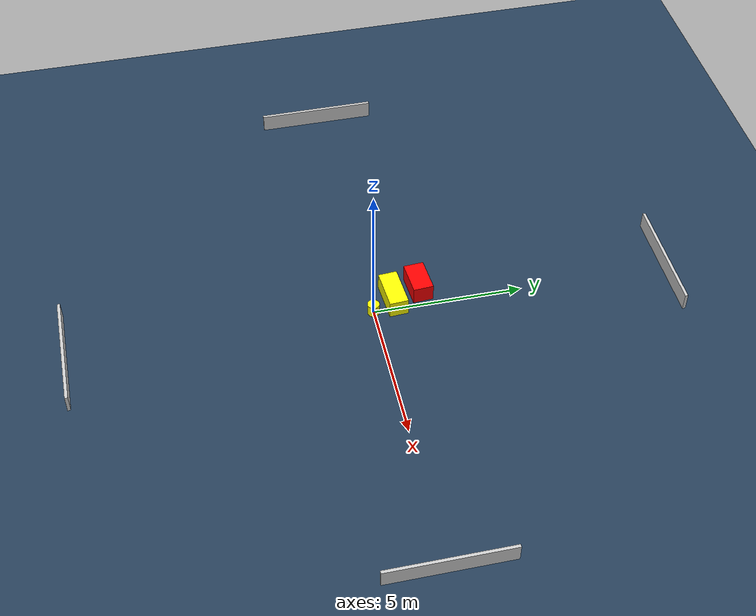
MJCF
<?xml version="1.0" ?>
<mujoco model="generated_environment">
  <option timestep="0.01" integrator="RK4" cone="elliptic"/>
  <default>
    <geom density="1"/>
  </default>
  <asset>
    <texture builtin="gradient" height="3072" name="skybox" rgb1="0.3 0.5 0.7" rgb2="0 0 0" type="skybox" width="512"/>
    <texture builtin="checker" height="300" name="groundplane" rgb1="0.2 0.3 0.4" rgb2="0.1 0.2 0.3" type="2d" width="300"/>
    <material name="groundplane" reflectance="0.2" texrepeat="5 5" texture="groundplane"/>
  </asset>
  <worldbody>
    <light dir="0 0 -1" directional="true" pos="0 0 1.5"/>
    <geom condim="3" friction="0.5 0.005 0.001" material="groundplane" name="floor" pos="0 0 0" size="0 0 0.05" type="plane"/>
    <body name="walls">
      <geom name="wall_1" condim="4" pos="-10.0 0.0 0.3" rgba="0.800000011920929 0.800000011920929 0.800000011920929 1.0" size="0.05 2.0 0.3" type="box"/>
      <geom name="wall_2" condim="4" pos="10.0 0.0 0.3" rgba="0.800000011920929 0.800000011920929 0.800000011920929 1.0" size="0.05 2.0 0.3" type="box"/>
      <geom name="wall_3" condim="4" pos="0.0 -10.0 0.3" rgba="0.800000011920929 0.800000011920929 0.800000011920929 1.0" size="2.0 0.05 0.3" type="box"/>
      <geom name="wall_4" condim="4" pos="0.0 10.0 0.3" rgba="0.800000011920929 0.800000011920929 0.800000011920929 1.0" size="2.0 0.05 0.3" type="box"/>
    </body>
    <body name="robot">
      <joint name="joint_x" type="slide" pos="0 0 0" axis="1 0 0"/>
      <joint name="joint_y" type="slide" pos="0 0 0" axis="0 1 0"/>
      <geom name="robot" type="cylinder" pos="0.0 0.0 0.2" size="0.2 0.2 0.0" mass="5.0" friction="1.0 0.005 0.0001" condim="4" rgba="1.0 1.0 0.0 1.0"/>
    </body>
    <body name="obstacle_1_movable">
      <geom name="obstacle_1_movable" condim="4" pos="-0.40035994123771423 0.7516808783633834 0.3" euler="0 0 3.747632199504074" friction="0.0 0.005 0.001" rgba="1.0 1.0 0.0 1.0" size="0.6887608422369236 0.3146582736935969 0.3" type="box" mass="0.1"/>
      <joint type="free"/>
    </body>
    <body name="obstacle_2_static">
      <geom name="obstacle_2_static" condim="4" pos="-0.7315090747690222 1.6782669447101821 0.3" euler="0 0 3.944398669749072" friction="0.0 0.005 0.001" rgba="1.0 0.0 0.0 1.0" size="0.5735874276395214 0.337657752859169 0.3" type="box"/>
    </body>
  </worldbody>
  <actuator>
    <motor name="actuator_x" joint="joint_x" gear="1" ctrlrange="-1 1"/>
    <motor name="actuator_y" joint="joint_y" gear="1" ctrlrange="-1 1"/>
  </actuator>
</mujoco>
